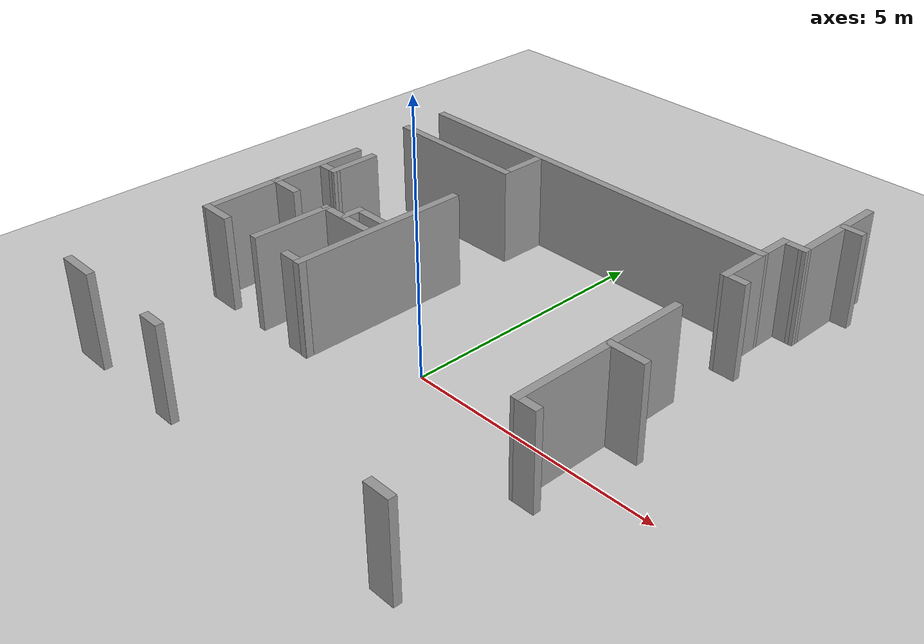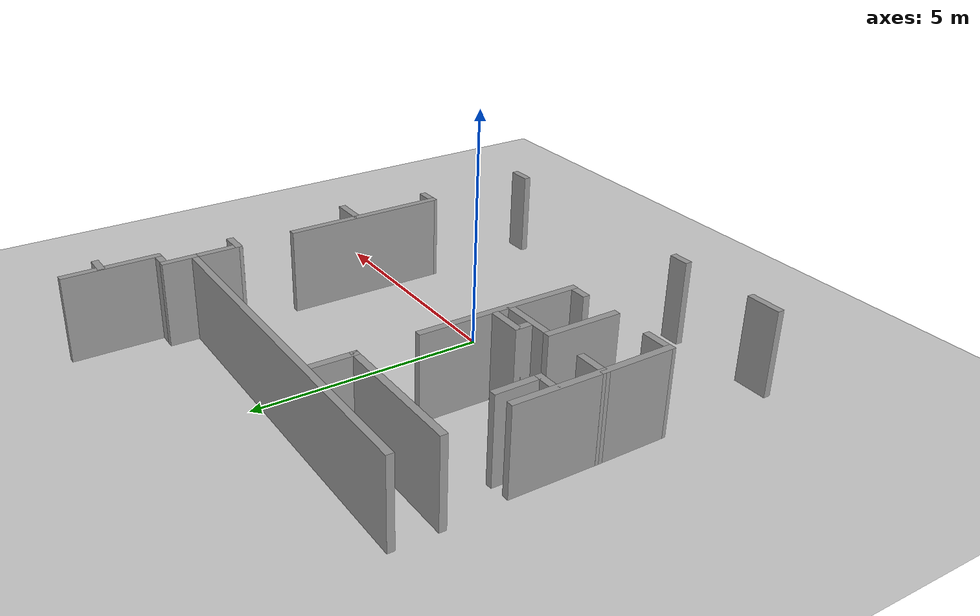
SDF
<sdf version="1.7">
 <world name="default">
  <model name="ground_plane">
   <static>1</static>
   <link name="link">
    <collision name="collision">
     <geometry><plane><normal>0 0 1</normal><size>100 100</size></plane></geometry>
     <surface>
      <contact><collide_bitmask>65535</collide_bitmask></contact>
      <friction><ode><mu>100</mu><mu2>50</mu2></ode></friction>
     </surface>
    </collision>
    <visual name="visual">
     <cast_shadows>0</cast_shadows>
     <geometry><plane><normal>0 0 1</normal><size>100 100</size></plane></geometry>
     <material>
      <script><uri>file://media/materials/scripts/gazebo.material</uri><name>Gazebo/Grey</name></script>
     </material>
    </visual>
   </link>
  </model>
  <model name="HQ_0">
   <link name="Wall_128">
    <pose>-2.03254 -3.63671 0 0 -0 3.14159</pose>
    <visual name="Wall_128_Visual">
     <pose>0 0 1.25 0 -0 0</pose>
     <geometry><box><size>0.444896 0.15 2</size></box></geometry>
     <material>
      <script><uri>file://media/materials/scripts/gazebo.material</uri><name>Gazebo/Grey</name></script>
      <ambient>1 1 1 1</ambient>
      <shader type="pixel"/>
     </material>
     <meta><layer>0</layer></meta>
    </visual>
    <collision name="Wall_128_Collision">
     <pose>0 0 1.25 0 -0 0</pose>
     <geometry><box><size>0.444896 0.15 2</size></box></geometry>
     <surface>
      <friction>
       <ode><mu>1</mu><mu2>1</mu2><fdir1>0 0 0</fdir1><slip1>0</slip1><slip2>0</slip2></ode>
       <torsional>
        <coefficient>1</coefficient>
        <patch_radius>0</patch_radius>
        <surface_radius>0</surface_radius>
        <use_patch_radius>1</use_patch_radius>
        <ode><slip>0</slip></ode>
       </torsional>
      </friction>
      <bounce><restitution_coefficient>0</restitution_coefficient><threshold>1e+06</threshold></bounce>
      <contact>
       <collide_without_contact>0</collide_without_contact>
       <collide_without_contact_bitmask>1</collide_without_contact_bitmask>
       <collide_bitmask>1</collide_bitmask>
       <ode>
        <soft_cfm>0</soft_cfm>
        <soft_erp>0.2</soft_erp>
        <kp>1e+13</kp>
        <kd>1</kd>
        <max_vel>0.01</max_vel>
        <min_depth>0</min_depth>
       </ode>
       <bullet>
        <split_impulse>1</split_impulse>
        <split_impulse_penetration_threshold>-0.01</split_impulse_penetration_threshold>
        <soft_cfm>0</soft_cfm>
        <soft_erp>0.2</soft_erp>
        <kp>1e+13</kp>
        <kd>1</kd>
       </bullet>
      </contact>
     </surface>
    </collision>
   </link>
   <link name="Wall_171">
    <pose>3.16808 0.700941 0 0 -0 1.57282</pose>
    <visual name="Wall_171_Visual">
     <pose>0 0 1.25 0 -0 0</pose>
     <geometry><box><size>3.58693 0.15 2</size></box></geometry>
     <material>
      <script><uri>file://media/materials/scripts/gazebo.material</uri><name>Gazebo/Grey</name></script>
      <ambient>1 1 1 1</ambient>
      <shader type="pixel"/>
     </material>
     <meta><layer>0</layer></meta>
    </visual>
    <collision name="Wall_171_Collision">
     <pose>0 0 1.25 0 -0 0</pose>
     <geometry><box><size>3.58693 0.15 2</size></box></geometry>
     <surface>
      <friction>
       <ode><mu>1</mu><mu2>1</mu2><fdir1>0 0 0</fdir1><slip1>0</slip1><slip2>0</slip2></ode>
       <torsional>
        <coefficient>1</coefficient>
        <patch_radius>0</patch_radius>
        <surface_radius>0</surface_radius>
        <use_patch_radius>1</use_patch_radius>
        <ode><slip>0</slip></ode>
       </torsional>
      </friction>
      <bounce><restitution_coefficient>0</restitution_coefficient><threshold>1e+06</threshold></bounce>
      <contact>
       <collide_without_contact>0</collide_without_contact>
       <collide_without_contact_bitmask>1</collide_without_contact_bitmask>
       <collide_bitmask>1</collide_bitmask>
       <ode>
        <soft_cfm>0</soft_cfm>
        <soft_erp>0.2</soft_erp>
        <kp>1e+13</kp>
        <kd>1</kd>
        <max_vel>0.01</max_vel>
        <min_depth>0</min_depth>
       </ode>
       <bullet>
        <split_impulse>1</split_impulse>
        <split_impulse_penetration_threshold>-0.01</split_impulse_penetration_threshold>
        <soft_cfm>0</soft_cfm>
        <soft_erp>0.2</soft_erp>
        <kp>1e+13</kp>
        <kd>1</kd>
       </bullet>
      </contact>
     </surface>
    </collision>
   </link>
   <link name="Wall_192">
    <pose>3.34656 -1.01752 0 0 -0 0</pose>
    <visual name="Wall_192_Visual">
     <pose>0 0 1.25 0 -0 0</pose>
     <geometry><box><size>0.5 0.15 2</size></box></geometry>
     <material>
      <script><uri>file://media/materials/scripts/gazebo.material</uri><name>Gazebo/Grey</name></script>
      <ambient>1 1 1 1</ambient>
      <shader type="pixel"/>
     </material>
     <meta><layer>0</layer></meta>
    </visual>
    <collision name="Wall_192_Collision">
     <pose>0 0 1.25 0 -0 0</pose>
     <geometry><box><size>0.5 0.15 2</size></box></geometry>
     <surface>
      <friction>
       <ode><mu>1</mu><mu2>1</mu2><fdir1>0 0 0</fdir1><slip1>0</slip1><slip2>0</slip2></ode>
       <torsional>
        <coefficient>1</coefficient>
        <patch_radius>0</patch_radius>
        <surface_radius>0</surface_radius>
        <use_patch_radius>1</use_patch_radius>
        <ode><slip>0</slip></ode>
       </torsional>
      </friction>
      <bounce><restitution_coefficient>0</restitution_coefficient><threshold>1e+06</threshold></bounce>
      <contact>
       <collide_without_contact>0</collide_without_contact>
       <collide_without_contact_bitmask>1</collide_without_contact_bitmask>
       <collide_bitmask>1</collide_bitmask>
       <ode>
        <soft_cfm>0</soft_cfm>
        <soft_erp>0.2</soft_erp>
        <kp>1e+13</kp>
        <kd>1</kd>
        <max_vel>0.01</max_vel>
        <min_depth>0</min_depth>
       </ode>
       <bullet>
        <split_impulse>1</split_impulse>
        <split_impulse_penetration_threshold>-0.01</split_impulse_penetration_threshold>
        <soft_cfm>0</soft_cfm>
        <soft_erp>0.2</soft_erp>
        <kp>1e+13</kp>
        <kd>1</kd>
       </bullet>
      </contact>
     </surface>
    </collision>
   </link>
   <link name="Wall_204">
    <pose>3.49517 0.905114 0 0 -0 0</pose>
    <inertial>
     <inertia><ixx>0</ixx><ixy>0</ixy><ixz>0</ixz><iyy>0</iyy><iyz>0</iyz><izz>0</izz></inertia>
     <mass>0</mass>
    </inertial>
    <visual name="Wall_204_Visual">
     <pose>0 0 1.25 0 -0 0</pose>
     <geometry><box><size>0.77819 0.15 2</size></box></geometry>
     <material>
      <script><uri>file://media/materials/scripts/gazebo.material</uri><name>Gazebo/Grey</name></script>
      <ambient>1 1 1 1</ambient>
      <shader type="pixel"/>
     </material>
     <meta><layer>0</layer></meta>
    </visual>
    <collision name="Wall_204_Collision">
     <pose>0 0 1.25 0 -0 0</pose>
     <geometry><box><size>0.77819 0.15 2</size></box></geometry>
     <surface>
      <friction>
       <ode><mu>1</mu><mu2>1</mu2><fdir1>0 0 0</fdir1><slip1>0</slip1><slip2>0</slip2></ode>
       <torsional>
        <coefficient>1</coefficient>
        <patch_radius>0</patch_radius>
        <surface_radius>0</surface_radius>
        <use_patch_radius>1</use_patch_radius>
        <ode><slip>0</slip></ode>
       </torsional>
      </friction>
      <bounce><restitution_coefficient>0</restitution_coefficient><threshold>1e+06</threshold></bounce>
      <contact>
       <collide_without_contact>0</collide_without_contact>
       <collide_without_contact_bitmask>1</collide_without_contact_bitmask>
       <collide_bitmask>1</collide_bitmask>
       <ode>
        <soft_cfm>0</soft_cfm>
        <soft_erp>0.2</soft_erp>
        <kp>1e+13</kp>
        <kd>1</kd>
        <max_vel>0.01</max_vel>
        <min_depth>0</min_depth>
       </ode>
       <bullet>
        <split_impulse>1</split_impulse>
        <split_impulse_penetration_threshold>-0.01</split_impulse_penetration_threshold>
        <soft_cfm>0</soft_cfm>
        <soft_erp>0.2</soft_erp>
        <kp>1e+13</kp>
        <kd>1</kd>
       </bullet>
      </contact>
     </surface>
    </collision>
   </link>
   <link name="Wall_217">
    <pose>3.12789 4.20563 0 0 0 -1.56588</pose>
    <visual name="Wall_217_Visual">
     <pose>0 0 1.25 0 -0 0</pose>
     <geometry><box><size>1.10451 0.15 2</size></box></geometry>
     <material>
      <script><uri>file://media/materials/scripts/gazebo.material</uri><name>Gazebo/Grey</name></script>
      <ambient>1 1 1 1</ambient>
      <shader type="pixel"/>
     </material>
     <meta><layer>0</layer></meta>
    </visual>
    <collision name="Wall_217_Collision">
     <pose>0 0 1.25 0 -0 0</pose>
     <geometry><box><size>1.10451 0.15 2</size></box></geometry>
     <surface>
      <friction>
       <ode><mu>1</mu><mu2>1</mu2><fdir1>0 0 0</fdir1><slip1>0</slip1><slip2>0</slip2></ode>
       <torsional>
        <coefficient>1</coefficient>
        <patch_radius>0</patch_radius>
        <surface_radius>0</surface_radius>
        <use_patch_radius>1</use_patch_radius>
        <ode><slip>0</slip></ode>
       </torsional>
      </friction>
      <bounce><restitution_coefficient>0</restitution_coefficient><threshold>1e+06</threshold></bounce>
      <contact>
       <collide_without_contact>0</collide_without_contact>
       <collide_without_contact_bitmask>1</collide_without_contact_bitmask>
       <collide_bitmask>1</collide_bitmask>
       <ode>
        <soft_cfm>0</soft_cfm>
        <soft_erp>0.2</soft_erp>
        <kp>1e+13</kp>
        <kd>1</kd>
        <max_vel>0.01</max_vel>
        <min_depth>0</min_depth>
       </ode>
       <bullet>
        <split_impulse>1</split_impulse>
        <split_impulse_penetration_threshold>-0.01</split_impulse_penetration_threshold>
        <soft_cfm>0</soft_cfm>
        <soft_erp>0.2</soft_erp>
        <kp>1e+13</kp>
        <kd>1</kd>
       </bullet>
      </contact>
     </surface>
    </collision>
   </link>
   <link name="Wall_220">
    <pose>3.30523 3.72838 0 0 -0 0</pose>
    <visual name="Wall_220_Visual">
     <pose>0 0 1.25 0 -0 0</pose>
     <geometry><box><size>0.5 0.15 2</size></box></geometry>
     <material>
      <script><uri>file://media/materials/scripts/gazebo.material</uri><name>Gazebo/Grey</name></script>
      <ambient>1 1 1 1</ambient>
      <shader type="pixel"/>
     </material>
     <meta><layer>0</layer></meta>
    </visual>
    <collision name="Wall_220_Collision">
     <pose>0 0 1.25 0 -0 0</pose>
     <geometry><box><size>0.5 0.15 2</size></box></geometry>
     <surface>
      <friction>
       <ode><mu>1</mu><mu2>1</mu2><fdir1>0 0 0</fdir1><slip1>0</slip1><slip2>0</slip2></ode>
       <torsional>
        <coefficient>1</coefficient>
        <patch_radius>0</patch_radius>
        <surface_radius>0</surface_radius>
        <use_patch_radius>1</use_patch_radius>
        <ode><slip>0</slip></ode>
       </torsional>
      </friction>
      <bounce><restitution_coefficient>0</restitution_coefficient><threshold>1e+06</threshold></bounce>
      <contact>
       <collide_without_contact>0</collide_without_contact>
       <collide_without_contact_bitmask>1</collide_without_contact_bitmask>
       <collide_bitmask>1</collide_bitmask>
       <ode>
        <soft_cfm>0</soft_cfm>
        <soft_erp>0.2</soft_erp>
        <kp>1e+13</kp>
        <kd>1</kd>
        <max_vel>0.01</max_vel>
        <min_depth>0</min_depth>
       </ode>
       <bullet>
        <split_impulse>1</split_impulse>
        <split_impulse_penetration_threshold>-0.01</split_impulse_penetration_threshold>
        <soft_cfm>0</soft_cfm>
        <soft_erp>0.2</soft_erp>
        <kp>1e+13</kp>
        <kd>1</kd>
       </bullet>
      </contact>
     </surface>
    </collision>
   </link>
   <link name="Wall_235">
    <pose>3.35912 -3.63375 0 0 -0 0</pose>
    <visual name="Wall_235_Visual">
     <pose>0 0 1.25 0 -0 0</pose>
     <geometry><box><size>0.5 0.15 2</size></box></geometry>
     <material>
      <script><uri>file://media/materials/scripts/gazebo.material</uri><name>Gazebo/Grey</name></script>
      <ambient>1 1 1 1</ambient>
      <shader type="pixel"/>
     </material>
     <meta><layer>0</layer></meta>
    </visual>
    <collision name="Wall_235_Collision">
     <pose>0 0 1.25 0 -0 0</pose>
     <geometry><box><size>0.5 0.15 2</size></box></geometry>
     <surface>
      <friction>
       <ode><mu>1</mu><mu2>1</mu2><fdir1>0 0 0</fdir1><slip1>0</slip1><slip2>0</slip2></ode>
       <torsional>
        <coefficient>1</coefficient>
        <patch_radius>0</patch_radius>
        <surface_radius>0</surface_radius>
        <use_patch_radius>1</use_patch_radius>
        <ode><slip>0</slip></ode>
       </torsional>
      </friction>
      <bounce><restitution_coefficient>0</restitution_coefficient><threshold>1e+06</threshold></bounce>
      <contact>
       <collide_without_contact>0</collide_without_contact>
       <collide_without_contact_bitmask>1</collide_without_contact_bitmask>
       <collide_bitmask>1</collide_bitmask>
       <ode>
        <soft_cfm>0</soft_cfm>
        <soft_erp>0.2</soft_erp>
        <kp>1e+13</kp>
        <kd>1</kd>
        <max_vel>0.01</max_vel>
        <min_depth>0</min_depth>
       </ode>
       <bullet>
        <split_impulse>1</split_impulse>
        <split_impulse_penetration_threshold>-0.01</split_impulse_penetration_threshold>
        <soft_cfm>0</soft_cfm>
        <soft_erp>0.2</soft_erp>
        <kp>1e+13</kp>
        <kd>1</kd>
       </bullet>
      </contact>
     </surface>
    </collision>
   </link>
   <link name="Wall_240">
    <pose>-2.6327 0.685901 0 0 -0 1.5708</pose>
    <visual name="Wall_240_Visual">
     <pose>0 0 1.25 0 -0 0</pose>
     <geometry><box><size>0.490265 0.15 2</size></box></geometry>
     <material>
      <script><uri>file://media/materials/scripts/gazebo.material</uri><name>Gazebo/Grey</name></script>
      <ambient>1 1 1 1</ambient>
      <shader type="pixel"/>
     </material>
     <meta><layer>0</layer></meta>
    </visual>
    <collision name="Wall_240_Collision">
     <pose>0 0 1.25 0 -0 0</pose>
     <geometry><box><size>0.490265 0.15 2</size></box></geometry>
     <surface>
      <friction>
       <ode><mu>1</mu><mu2>1</mu2><fdir1>0 0 0</fdir1><slip1>0</slip1><slip2>0</slip2></ode>
       <torsional>
        <coefficient>1</coefficient>
        <patch_radius>0</patch_radius>
        <surface_radius>0</surface_radius>
        <use_patch_radius>1</use_patch_radius>
        <ode><slip>0</slip></ode>
       </torsional>
      </friction>
      <bounce><restitution_coefficient>0</restitution_coefficient><threshold>1e+06</threshold></bounce>
      <contact>
       <collide_without_contact>0</collide_without_contact>
       <collide_without_contact_bitmask>1</collide_without_contact_bitmask>
       <collide_bitmask>1</collide_bitmask>
       <ode>
        <soft_cfm>0</soft_cfm>
        <soft_erp>0.2</soft_erp>
        <kp>1e+13</kp>
        <kd>1</kd>
        <max_vel>0.01</max_vel>
        <min_depth>0</min_depth>
       </ode>
       <bullet>
        <split_impulse>1</split_impulse>
        <split_impulse_penetration_threshold>-0.01</split_impulse_penetration_threshold>
        <soft_cfm>0</soft_cfm>
        <soft_erp>0.2</soft_erp>
        <kp>1e+13</kp>
        <kd>1</kd>
       </bullet>
      </contact>
     </surface>
    </collision>
   </link>
   <link name="Wall_241">
    <pose>-2.3327 0.856033 0 0 -0 0</pose>
    <visual name="Wall_241_Visual">
     <pose>0 0 1.25 0 -0 0</pose>
     <geometry><box><size>0.75 0.15 2</size></box></geometry>
     <material>
      <script><uri>file://media/materials/scripts/gazebo.material</uri><name>Gazebo/Grey</name></script>
      <ambient>1 1 1 1</ambient>
      <shader type="pixel"/>
     </material>
     <meta><layer>0</layer></meta>
    </visual>
    <collision name="Wall_241_Collision">
     <pose>0 0 1.25 0 -0 0</pose>
     <geometry><box><size>0.75 0.15 2</size></box></geometry>
     <surface>
      <friction>
       <ode><mu>1</mu><mu2>1</mu2><fdir1>0 0 0</fdir1><slip1>0</slip1><slip2>0</slip2></ode>
       <torsional>
        <coefficient>1</coefficient>
        <patch_radius>0</patch_radius>
        <surface_radius>0</surface_radius>
        <use_patch_radius>1</use_patch_radius>
        <ode><slip>0</slip></ode>
       </torsional>
      </friction>
      <bounce><restitution_coefficient>0</restitution_coefficient><threshold>1e+06</threshold></bounce>
      <contact>
       <collide_without_contact>0</collide_without_contact>
       <collide_without_contact_bitmask>1</collide_without_contact_bitmask>
       <collide_bitmask>1</collide_bitmask>
       <ode>
        <soft_cfm>0</soft_cfm>
        <soft_erp>0.2</soft_erp>
        <kp>1e+13</kp>
        <kd>1</kd>
        <max_vel>0.01</max_vel>
        <min_depth>0</min_depth>
       </ode>
       <bullet>
        <split_impulse>1</split_impulse>
        <split_impulse_penetration_threshold>-0.01</split_impulse_penetration_threshold>
        <soft_cfm>0</soft_cfm>
        <soft_erp>0.2</soft_erp>
        <kp>1e+13</kp>
        <kd>1</kd>
       </bullet>
      </contact>
     </surface>
    </collision>
   </link>
   <link name="Wall_244">
    <pose>-4.25062 -3.64086 0 0 -0 3.14159</pose>
    <visual name="Wall_244_Visual">
     <pose>0 0 1.25 0 -0 0</pose>
     <geometry><box><size>0.75 0.15 2</size></box></geometry>
     <material>
      <script><uri>file://media/materials/scripts/gazebo.material</uri><name>Gazebo/Grey</name></script>
      <ambient>1 1 1 1</ambient>
      <shader type="pixel"/>
     </material>
     <meta><layer>0</layer></meta>
    </visual>
    <collision name="Wall_244_Collision">
     <pose>0 0 1.25 0 -0 0</pose>
     <geometry><box><size>0.75 0.15 2</size></box></geometry>
     <surface>
      <friction>
       <ode><mu>1</mu><mu2>1</mu2><fdir1>0 0 0</fdir1><slip1>0</slip1><slip2>0</slip2></ode>
       <torsional>
        <coefficient>1</coefficient>
        <patch_radius>0</patch_radius>
        <surface_radius>0</surface_radius>
        <use_patch_radius>1</use_patch_radius>
        <ode><slip>0</slip></ode>
       </torsional>
      </friction>
      <bounce><restitution_coefficient>0</restitution_coefficient><threshold>1e+06</threshold></bounce>
      <contact>
       <collide_without_contact>0</collide_without_contact>
       <collide_without_contact_bitmask>1</collide_without_contact_bitmask>
       <collide_bitmask>1</collide_bitmask>
       <ode>
        <soft_cfm>0</soft_cfm>
        <soft_erp>0.2</soft_erp>
        <kp>1e+13</kp>
        <kd>1</kd>
        <max_vel>0.01</max_vel>
        <min_depth>0</min_depth>
       </ode>
       <bullet>
        <split_impulse>1</split_impulse>
        <split_impulse_penetration_threshold>-0.01</split_impulse_penetration_threshold>
        <soft_cfm>0</soft_cfm>
        <soft_erp>0.2</soft_erp>
        <kp>1e+13</kp>
        <kd>1</kd>
       </bullet>
      </contact>
     </surface>
    </collision>
   </link>
   <link name="Wall_260">
    <pose>3.70877 6.46205 0 0 -0 0</pose>
    <visual name="Wall_260_Visual">
     <pose>0 0 1.25 0 -0 0</pose>
     <geometry><box><size>0.453029 0.15 2</size></box></geometry>
     <material>
      <script><uri>file://media/materials/scripts/gazebo.material</uri><name>Gazebo/Grey</name></script>
      <ambient>1 1 1 1</ambient>
      <shader type="pixel"/>
     </material>
     <meta><layer>0</layer></meta>
    </visual>
    <collision name="Wall_260_Collision">
     <pose>0 0 1.25 0 -0 0</pose>
     <geometry><box><size>0.453029 0.15 2</size></box></geometry>
     <surface>
      <friction>
       <ode><mu>1</mu><mu2>1</mu2><fdir1>0 0 0</fdir1><slip1>0</slip1><slip2>0</slip2></ode>
       <torsional>
        <coefficient>1</coefficient>
        <patch_radius>0</patch_radius>
        <surface_radius>0</surface_radius>
        <use_patch_radius>1</use_patch_radius>
        <ode><slip>0</slip></ode>
       </torsional>
      </friction>
      <bounce><restitution_coefficient>0</restitution_coefficient><threshold>1e+06</threshold></bounce>
      <contact>
       <collide_without_contact>0</collide_without_contact>
       <collide_without_contact_bitmask>1</collide_without_contact_bitmask>
       <collide_bitmask>1</collide_bitmask>
       <ode>
        <soft_cfm>0</soft_cfm>
        <soft_erp>0.2</soft_erp>
        <kp>1e+13</kp>
        <kd>1</kd>
        <max_vel>0.01</max_vel>
        <min_depth>0</min_depth>
       </ode>
       <bullet>
        <split_impulse>1</split_impulse>
        <split_impulse_penetration_threshold>-0.01</split_impulse_penetration_threshold>
        <soft_cfm>0</soft_cfm>
        <soft_erp>0.2</soft_erp>
        <kp>1e+13</kp>
        <kd>1</kd>
       </bullet>
      </contact>
     </surface>
    </collision>
   </link>
   <link name="Wall_4">
    <pose>-0.779458 4.68787 0 0 0 -0.00128</pose>
    <visual name="Wall_4_Visual">
     <pose>0 0 1.25 0 -0 0</pose>
     <geometry><box><size>7.96001 0.15 2</size></box></geometry>
     <material>
      <script><uri>file://media/materials/scripts/gazebo.material</uri><name>Gazebo/Grey</name></script>
      <ambient>1 1 1 1</ambient>
      <shader type="pixel"/>
     </material>
     <meta><layer>0</layer></meta>
    </visual>
    <collision name="Wall_4_Collision">
     <pose>0 0 1.25 0 -0 0</pose>
     <geometry><box><size>7.96001 0.15 2</size></box></geometry>
     <surface>
      <friction>
       <ode><mu>1</mu><mu2>1</mu2><fdir1>0 0 0</fdir1><slip1>0</slip1><slip2>0</slip2></ode>
       <torsional>
        <coefficient>1</coefficient>
        <patch_radius>0</patch_radius>
        <surface_radius>0</surface_radius>
        <use_patch_radius>1</use_patch_radius>
        <ode><slip>0</slip></ode>
       </torsional>
      </friction>
      <bounce><restitution_coefficient>0</restitution_coefficient><threshold>1e+06</threshold></bounce>
      <contact>
       <collide_without_contact>0</collide_without_contact>
       <collide_without_contact_bitmask>1</collide_without_contact_bitmask>
       <collide_bitmask>1</collide_bitmask>
       <ode>
        <soft_cfm>0</soft_cfm>
        <soft_erp>0.2</soft_erp>
        <kp>1e+13</kp>
        <kd>1</kd>
        <max_vel>0.01</max_vel>
        <min_depth>0</min_depth>
       </ode>
       <bullet>
        <split_impulse>1</split_impulse>
        <split_impulse_penetration_threshold>-0.01</split_impulse_penetration_threshold>
        <soft_cfm>0</soft_cfm>
        <soft_erp>0.2</soft_erp>
        <kp>1e+13</kp>
        <kd>1</kd>
       </bullet>
      </contact>
     </surface>
    </collision>
   </link>
   <link name="Wall_45">
    <pose>-1.9023 0.710551 0 0 0 -1.5708</pose>
    <visual name="Wall_45_Visual">
     <pose>0 0 1.25 0 -0 0</pose>
     <geometry><box><size>3.53478 0.15 2</size></box></geometry>
     <material>
      <script><uri>file://media/materials/scripts/gazebo.material</uri><name>Gazebo/Grey</name></script>
      <ambient>1 1 1 1</ambient>
      <shader type="pixel"/>
     </material>
     <meta><layer>0</layer></meta>
    </visual>
    <collision name="Wall_45_Collision">
     <pose>0 0 1.25 0 -0 0</pose>
     <geometry><box><size>3.53478 0.15 2</size></box></geometry>
     <surface>
      <friction>
       <ode><mu>1</mu><mu2>1</mu2><fdir1>0 0 0</fdir1><slip1>0</slip1><slip2>0</slip2></ode>
       <torsional>
        <coefficient>1</coefficient>
        <patch_radius>0</patch_radius>
        <surface_radius>0</surface_radius>
        <use_patch_radius>1</use_patch_radius>
        <ode><slip>0</slip></ode>
       </torsional>
      </friction>
      <bounce><restitution_coefficient>0</restitution_coefficient><threshold>1e+06</threshold></bounce>
      <contact>
       <collide_without_contact>0</collide_without_contact>
       <collide_without_contact_bitmask>1</collide_without_contact_bitmask>
       <collide_bitmask>1</collide_bitmask>
       <ode>
        <soft_cfm>0</soft_cfm>
        <soft_erp>0.2</soft_erp>
        <kp>1e+13</kp>
        <kd>1</kd>
        <max_vel>0.01</max_vel>
        <min_depth>0</min_depth>
       </ode>
       <bullet>
        <split_impulse>1</split_impulse>
        <split_impulse_penetration_threshold>-0.01</split_impulse_penetration_threshold>
        <soft_cfm>0</soft_cfm>
        <soft_erp>0.2</soft_erp>
        <kp>1e+13</kp>
        <kd>1</kd>
       </bullet>
      </contact>
     </surface>
    </collision>
   </link>
   <link name="Wall_47">
    <pose>-2.0773 -0.973145 0 0 -0 3.14159</pose>
    <visual name="Wall_47_Visual">
     <pose>0 0 1.25 0 -0 0</pose>
     <geometry><box><size>0.5 0.15 2</size></box></geometry>
     <material>
      <script><uri>file://media/materials/scripts/gazebo.material</uri><name>Gazebo/Grey</name></script>
      <ambient>1 1 1 1</ambient>
      <shader type="pixel"/>
     </material>
     <meta><layer>0</layer></meta>
    </visual>
    <collision name="Wall_47_Collision">
     <pose>0 0 1.25 0 -0 0</pose>
     <geometry><box><size>0.5 0.15 2</size></box></geometry>
     <surface>
      <friction>
       <ode><mu>1</mu><mu2>1</mu2><fdir1>0 0 0</fdir1><slip1>0</slip1><slip2>0</slip2></ode>
       <torsional>
        <coefficient>1</coefficient>
        <patch_radius>0</patch_radius>
        <surface_radius>0</surface_radius>
        <use_patch_radius>1</use_patch_radius>
        <ode><slip>0</slip></ode>
       </torsional>
      </friction>
      <bounce><restitution_coefficient>0</restitution_coefficient><threshold>1e+06</threshold></bounce>
      <contact>
       <collide_without_contact>0</collide_without_contact>
       <collide_without_contact_bitmask>1</collide_without_contact_bitmask>
       <collide_bitmask>1</collide_bitmask>
       <ode>
        <soft_cfm>0</soft_cfm>
        <soft_erp>0.2</soft_erp>
        <kp>1e+13</kp>
        <kd>1</kd>
        <max_vel>0.01</max_vel>
        <min_depth>0</min_depth>
       </ode>
       <bullet>
        <split_impulse>1</split_impulse>
        <split_impulse_penetration_threshold>-0.01</split_impulse_penetration_threshold>
        <soft_cfm>0</soft_cfm>
        <soft_erp>0.2</soft_erp>
        <kp>1e+13</kp>
        <kd>1</kd>
       </bullet>
      </contact>
     </surface>
    </collision>
   </link>
   <link name="Wall_49">
    <pose>-3.09928 -0.248315 0 0 -0 1.5708</pose>
    <visual name="Wall_49_Visual">
     <pose>0 0 1.25 0 -0 0</pose>
     <geometry><box><size>1.62826 0.15 2</size></box></geometry>
     <material>
      <script><uri>file://media/materials/scripts/gazebo.material</uri><name>Gazebo/Grey</name></script>
      <ambient>1 1 1 1</ambient>
      <shader type="pixel"/>
     </material>
     <meta><layer>0</layer></meta>
    </visual>
    <collision name="Wall_49_Collision">
     <pose>0 0 1.25 0 -0 0</pose>
     <geometry><box><size>1.62826 0.15 2</size></box></geometry>
     <surface>
      <friction>
       <ode><mu>1</mu><mu2>1</mu2><fdir1>0 0 0</fdir1><slip1>0</slip1><slip2>0</slip2></ode>
       <torsional>
        <coefficient>1</coefficient>
        <patch_radius>0</patch_radius>
        <surface_radius>0</surface_radius>
        <use_patch_radius>1</use_patch_radius>
        <ode><slip>0</slip></ode>
       </torsional>
      </friction>
      <bounce><restitution_coefficient>0</restitution_coefficient><threshold>1e+06</threshold></bounce>
      <contact>
       <collide_without_contact>0</collide_without_contact>
       <collide_without_contact_bitmask>1</collide_without_contact_bitmask>
       <collide_bitmask>1</collide_bitmask>
       <ode>
        <soft_cfm>0</soft_cfm>
        <soft_erp>0.2</soft_erp>
        <kp>1e+13</kp>
        <kd>1</kd>
        <max_vel>0.01</max_vel>
        <min_depth>0</min_depth>
       </ode>
       <bullet>
        <split_impulse>1</split_impulse>
        <split_impulse_penetration_threshold>-0.01</split_impulse_penetration_threshold>
        <soft_cfm>0</soft_cfm>
        <soft_erp>0.2</soft_erp>
        <kp>1e+13</kp>
        <kd>1</kd>
       </bullet>
      </contact>
     </surface>
    </collision>
   </link>
   <link name="Wall_50">
    <pose>-2.51232 0.490815 0 0 -0 0</pose>
    <visual name="Wall_50_Visual">
     <pose>0 0 1.25 0 -0 0</pose>
     <geometry><box><size>1.32391 0.15 2</size></box></geometry>
     <material>
      <script><uri>file://media/materials/scripts/gazebo.material</uri><name>Gazebo/Grey</name></script>
      <ambient>1 1 1 1</ambient>
      <shader type="pixel"/>
     </material>
     <meta><layer>0</layer></meta>
    </visual>
    <collision name="Wall_50_Collision">
     <pose>0 0 1.25 0 -0 0</pose>
     <geometry><box><size>1.32391 0.15 2</size></box></geometry>
     <surface>
      <friction>
       <ode><mu>1</mu><mu2>1</mu2><fdir1>0 0 0</fdir1><slip1>0</slip1><slip2>0</slip2></ode>
       <torsional>
        <coefficient>1</coefficient>
        <patch_radius>0</patch_radius>
        <surface_radius>0</surface_radius>
        <use_patch_radius>1</use_patch_radius>
        <ode><slip>0</slip></ode>
       </torsional>
      </friction>
      <bounce><restitution_coefficient>0</restitution_coefficient><threshold>1e+06</threshold></bounce>
      <contact>
       <collide_without_contact>0</collide_without_contact>
       <collide_without_contact_bitmask>1</collide_without_contact_bitmask>
       <collide_bitmask>1</collide_bitmask>
       <ode>
        <soft_cfm>0</soft_cfm>
        <soft_erp>0.2</soft_erp>
        <kp>1e+13</kp>
        <kd>1</kd>
        <max_vel>0.01</max_vel>
        <min_depth>0</min_depth>
       </ode>
       <bullet>
        <split_impulse>1</split_impulse>
        <split_impulse_penetration_threshold>-0.01</split_impulse_penetration_threshold>
        <soft_cfm>0</soft_cfm>
        <soft_erp>0.2</soft_erp>
        <kp>1e+13</kp>
        <kd>1</kd>
       </bullet>
      </contact>
     </surface>
    </collision>
   </link>
   <link name="Wall_55">
    <pose>-4.56015 -0.248315 0 0 -0 1.58256</pose>
    <visual name="Wall_55_Visual">
     <pose>0 0 1.25 0 -0 0</pose>
     <geometry><box><size>1.62836 0.15 2</size></box></geometry>
     <material>
      <script><uri>file://media/materials/scripts/gazebo.material</uri><name>Gazebo/Grey</name></script>
      <ambient>1 1 1 1</ambient>
      <shader type="pixel"/>
     </material>
     <meta><layer>0</layer></meta>
    </visual>
    <collision name="Wall_55_Collision">
     <pose>0 0 1.25 0 -0 0</pose>
     <geometry><box><size>1.62836 0.15 2</size></box></geometry>
     <surface>
      <friction>
       <ode><mu>1</mu><mu2>1</mu2><fdir1>0 0 0</fdir1><slip1>0</slip1><slip2>0</slip2></ode>
       <torsional>
        <coefficient>1</coefficient>
        <patch_radius>0</patch_radius>
        <surface_radius>0</surface_radius>
        <use_patch_radius>1</use_patch_radius>
        <ode><slip>0</slip></ode>
       </torsional>
      </friction>
      <bounce><restitution_coefficient>0</restitution_coefficient><threshold>1e+06</threshold></bounce>
      <contact>
       <collide_without_contact>0</collide_without_contact>
       <collide_without_contact_bitmask>1</collide_without_contact_bitmask>
       <collide_bitmask>1</collide_bitmask>
       <ode>
        <soft_cfm>0</soft_cfm>
        <soft_erp>0.2</soft_erp>
        <kp>1e+13</kp>
        <kd>1</kd>
        <max_vel>0.01</max_vel>
        <min_depth>0</min_depth>
       </ode>
       <bullet>
        <split_impulse>1</split_impulse>
        <split_impulse_penetration_threshold>-0.01</split_impulse_penetration_threshold>
        <soft_cfm>0</soft_cfm>
        <soft_erp>0.2</soft_erp>
        <kp>1e+13</kp>
        <kd>1</kd>
       </bullet>
      </contact>
     </surface>
    </collision>
   </link>
   <link name="Wall_56">
    <pose>-4.29493 0.48212 0 0 -0 0</pose>
    <visual name="Wall_56_Visual">
     <pose>0 0 1.25 0 -0 0</pose>
     <geometry><box><size>0.697826 0.15 2</size></box></geometry>
     <material>
      <script><uri>file://media/materials/scripts/gazebo.material</uri><name>Gazebo/Grey</name></script>
      <ambient>1 1 1 1</ambient>
      <shader type="pixel"/>
     </material>
     <meta><layer>0</layer></meta>
    </visual>
    <collision name="Wall_56_Collision">
     <pose>0 0 1.25 0 -0 0</pose>
     <geometry><box><size>0.697826 0.15 2</size></box></geometry>
     <surface>
      <friction>
       <ode><mu>1</mu><mu2>1</mu2><fdir1>0 0 0</fdir1><slip1>0</slip1><slip2>0</slip2></ode>
       <torsional>
        <coefficient>1</coefficient>
        <patch_radius>0</patch_radius>
        <surface_radius>0</surface_radius>
        <use_patch_radius>1</use_patch_radius>
        <ode><slip>0</slip></ode>
       </torsional>
      </friction>
      <bounce><restitution_coefficient>0</restitution_coefficient><threshold>1e+06</threshold></bounce>
      <contact>
       <collide_without_contact>0</collide_without_contact>
       <collide_without_contact_bitmask>1</collide_without_contact_bitmask>
       <collide_bitmask>1</collide_bitmask>
       <ode>
        <soft_cfm>0</soft_cfm>
        <soft_erp>0.2</soft_erp>
        <kp>1e+13</kp>
        <kd>1</kd>
        <max_vel>0.01</max_vel>
        <min_depth>0</min_depth>
       </ode>
       <bullet>
        <split_impulse>1</split_impulse>
        <split_impulse_penetration_threshold>-0.01</split_impulse_penetration_threshold>
        <soft_cfm>0</soft_cfm>
        <soft_erp>0.2</soft_erp>
        <kp>1e+13</kp>
        <kd>1</kd>
       </bullet>
      </contact>
     </surface>
    </collision>
   </link>
   <link name="Wall_6">
    <pose>3.12554 4.99287 0 0 -0 1.5708</pose>
    <visual name="Wall_6_Visual">
     <pose>0 0 1.25 0 -0 0</pose>
     <geometry><box><size>0.77 0.15 2</size></box></geometry>
     <material>
      <script><uri>file://media/materials/scripts/gazebo.material</uri><name>Gazebo/Grey</name></script>
      <ambient>1 1 1 1</ambient>
      <shader type="pixel"/>
     </material>
     <meta><layer>0</layer></meta>
    </visual>
    <collision name="Wall_6_Collision">
     <pose>0 0 1.25 0 -0 0</pose>
     <geometry><box><size>0.77 0.15 2</size></box></geometry>
     <surface>
      <friction>
       <ode><mu>1</mu><mu2>1</mu2><fdir1>0 0 0</fdir1><slip1>0</slip1><slip2>0</slip2></ode>
       <torsional>
        <coefficient>1</coefficient>
        <patch_radius>0</patch_radius>
        <surface_radius>0</surface_radius>
        <use_patch_radius>1</use_patch_radius>
        <ode><slip>0</slip></ode>
       </torsional>
      </friction>
      <bounce><restitution_coefficient>0</restitution_coefficient><threshold>1e+06</threshold></bounce>
      <contact>
       <collide_without_contact>0</collide_without_contact>
       <collide_without_contact_bitmask>1</collide_without_contact_bitmask>
       <collide_bitmask>1</collide_bitmask>
       <ode>
        <soft_cfm>0</soft_cfm>
        <soft_erp>0.2</soft_erp>
        <kp>1e+13</kp>
        <kd>1</kd>
        <max_vel>0.01</max_vel>
        <min_depth>0</min_depth>
       </ode>
       <bullet>
        <split_impulse>1</split_impulse>
        <split_impulse_penetration_threshold>-0.01</split_impulse_penetration_threshold>
        <soft_cfm>0</soft_cfm>
        <soft_erp>0.2</soft_erp>
        <kp>1e+13</kp>
        <kd>1</kd>
       </bullet>
      </contact>
     </surface>
    </collision>
   </link>
   <link name="Wall_60">
    <pose>-4.28623 -0.987445 0 0 -0 0</pose>
    <visual name="Wall_60_Visual">
     <pose>0 0 1.25 0 -0 0</pose>
     <geometry><box><size>0.680506 0.15 2</size></box></geometry>
     <material>
      <script><uri>file://media/materials/scripts/gazebo.material</uri><name>Gazebo/Grey</name></script>
      <ambient>1 1 1 1</ambient>
      <shader type="pixel"/>
     </material>
     <meta><layer>0</layer></meta>
    </visual>
    <collision name="Wall_60_Collision">
     <pose>0 0 1.25 0 -0 0</pose>
     <geometry><box><size>0.680506 0.15 2</size></box></geometry>
     <surface>
      <friction>
       <ode><mu>1</mu><mu2>1</mu2><fdir1>0 0 0</fdir1><slip1>0</slip1><slip2>0</slip2></ode>
       <torsional>
        <coefficient>1</coefficient>
        <patch_radius>0</patch_radius>
        <surface_radius>0</surface_radius>
        <use_patch_radius>1</use_patch_radius>
        <ode><slip>0</slip></ode>
       </torsional>
      </friction>
      <bounce><restitution_coefficient>0</restitution_coefficient><threshold>1e+06</threshold></bounce>
      <contact>
       <collide_without_contact>0</collide_without_contact>
       <collide_without_contact_bitmask>1</collide_without_contact_bitmask>
       <collide_bitmask>1</collide_bitmask>
       <ode>
        <soft_cfm>0</soft_cfm>
        <soft_erp>0.2</soft_erp>
        <kp>1e+13</kp>
        <kd>1</kd>
        <max_vel>0.01</max_vel>
        <min_depth>0</min_depth>
       </ode>
       <bullet>
        <split_impulse>1</split_impulse>
        <split_impulse_penetration_threshold>-0.01</split_impulse_penetration_threshold>
        <soft_cfm>0</soft_cfm>
        <soft_erp>0.2</soft_erp>
        <kp>1e+13</kp>
        <kd>1</kd>
       </bullet>
      </contact>
     </surface>
    </collision>
   </link>
   <link name="Wall_62">
    <pose>-4.56884 1.40712 0 0 -0 1.5708</pose>
    <visual name="Wall_62_Visual">
     <pose>0 0 1.25 0 -0 0</pose>
     <geometry><box><size>2 0.15 2</size></box></geometry>
     <material>
      <script><uri>file://media/materials/scripts/gazebo.material</uri><name>Gazebo/Grey</name></script>
      <ambient>1 1 1 1</ambient>
      <shader type="pixel"/>
     </material>
     <meta><layer>0</layer></meta>
    </visual>
    <collision name="Wall_62_Collision">
     <pose>0 0 1.25 0 -0 0</pose>
     <geometry><box><size>2 0.15 2</size></box></geometry>
     <surface>
      <friction>
       <ode><mu>1</mu><mu2>1</mu2><fdir1>0 0 0</fdir1><slip1>0</slip1><slip2>0</slip2></ode>
       <torsional>
        <coefficient>1</coefficient>
        <patch_radius>0</patch_radius>
        <surface_radius>0</surface_radius>
        <use_patch_radius>1</use_patch_radius>
        <ode><slip>0</slip></ode>
       </torsional>
      </friction>
      <bounce><restitution_coefficient>0</restitution_coefficient><threshold>1e+06</threshold></bounce>
      <contact>
       <collide_without_contact>0</collide_without_contact>
       <collide_without_contact_bitmask>1</collide_without_contact_bitmask>
       <collide_bitmask>1</collide_bitmask>
       <ode>
        <soft_cfm>0</soft_cfm>
        <soft_erp>0.2</soft_erp>
        <kp>1e+13</kp>
        <kd>1</kd>
        <max_vel>0.01</max_vel>
        <min_depth>0</min_depth>
       </ode>
       <bullet>
        <split_impulse>1</split_impulse>
        <split_impulse_penetration_threshold>-0.01</split_impulse_penetration_threshold>
        <soft_cfm>0</soft_cfm>
        <soft_erp>0.2</soft_erp>
        <kp>1e+13</kp>
        <kd>1</kd>
       </bullet>
      </contact>
     </surface>
    </collision>
   </link>
   <link name="Wall_65">
    <pose>-4.16449 1.93864 0 0 0 -1.56109</pose>
    <visual name="Wall_65_Visual">
     <pose>0 0 1.25 0 -0 0</pose>
     <geometry><box><size>1.04582 0.15 2</size></box></geometry>
     <material>
      <script><uri>file://media/materials/scripts/gazebo.material</uri><name>Gazebo/Grey</name></script>
      <ambient>1 1 1 1</ambient>
      <shader type="pixel"/>
     </material>
     <meta><layer>0</layer></meta>
    </visual>
    <collision name="Wall_65_Collision">
     <pose>0 0 1.25 0 -0 0</pose>
     <geometry><box><size>1.04582 0.15 2</size></box></geometry>
     <surface>
      <friction>
       <ode><mu>1</mu><mu2>1</mu2><fdir1>0 0 0</fdir1><slip1>0</slip1><slip2>0</slip2></ode>
       <torsional>
        <coefficient>1</coefficient>
        <patch_radius>0</patch_radius>
        <surface_radius>0</surface_radius>
        <use_patch_radius>1</use_patch_radius>
        <ode><slip>0</slip></ode>
       </torsional>
      </friction>
      <bounce><restitution_coefficient>0</restitution_coefficient><threshold>1e+06</threshold></bounce>
      <contact>
       <collide_without_contact>0</collide_without_contact>
       <collide_without_contact_bitmask>1</collide_without_contact_bitmask>
       <collide_bitmask>1</collide_bitmask>
       <ode>
        <soft_cfm>0</soft_cfm>
        <soft_erp>0.2</soft_erp>
        <kp>1e+13</kp>
        <kd>1</kd>
        <max_vel>0.01</max_vel>
        <min_depth>0</min_depth>
       </ode>
       <bullet>
        <split_impulse>1</split_impulse>
        <split_impulse_penetration_threshold>-0.01</split_impulse_penetration_threshold>
        <soft_cfm>0</soft_cfm>
        <soft_erp>0.2</soft_erp>
        <kp>1e+13</kp>
        <kd>1</kd>
       </bullet>
      </contact>
     </surface>
    </collision>
   </link>
   <link name="Wall_66">
    <pose>-4.35145 1.49082 0 0 -0 3.14159</pose>
    <visual name="Wall_66_Visual">
     <pose>0 0 1.25 0 -0 0</pose>
     <geometry><box><size>0.532609 0.15 2</size></box></geometry>
     <material>
      <script><uri>file://media/materials/scripts/gazebo.material</uri><name>Gazebo/Grey</name></script>
      <ambient>1 1 1 1</ambient>
      <shader type="pixel"/>
     </material>
     <meta><layer>0</layer></meta>
    </visual>
    <collision name="Wall_66_Collision">
     <pose>0 0 1.25 0 -0 0</pose>
     <geometry><box><size>0.532609 0.15 2</size></box></geometry>
     <surface>
      <friction>
       <ode><mu>1</mu><mu2>1</mu2><fdir1>0 0 0</fdir1><slip1>0</slip1><slip2>0</slip2></ode>
       <torsional>
        <coefficient>1</coefficient>
        <patch_radius>0</patch_radius>
        <surface_radius>0</surface_radius>
        <use_patch_radius>1</use_patch_radius>
        <ode><slip>0</slip></ode>
       </torsional>
      </friction>
      <bounce><restitution_coefficient>0</restitution_coefficient><threshold>1e+06</threshold></bounce>
      <contact>
       <collide_without_contact>0</collide_without_contact>
       <collide_without_contact_bitmask>1</collide_without_contact_bitmask>
       <collide_bitmask>1</collide_bitmask>
       <ode>
        <soft_cfm>0</soft_cfm>
        <soft_erp>0.2</soft_erp>
        <kp>1e+13</kp>
        <kd>1</kd>
        <max_vel>0.01</max_vel>
        <min_depth>0</min_depth>
       </ode>
       <bullet>
        <split_impulse>1</split_impulse>
        <split_impulse_penetration_threshold>-0.01</split_impulse_penetration_threshold>
        <soft_cfm>0</soft_cfm>
        <soft_erp>0.2</soft_erp>
        <kp>1e+13</kp>
        <kd>1</kd>
       </bullet>
      </contact>
     </surface>
    </collision>
   </link>
   <link name="Wall_7">
    <pose>3.33054 5.30287 0 0 -0 0</pose>
    <visual name="Wall_7_Visual">
     <pose>0 0 1.25 0 -0 0</pose>
     <geometry><box><size>0.56 0.15 2</size></box></geometry>
     <material>
      <script><uri>file://media/materials/scripts/gazebo.material</uri><name>Gazebo/Grey</name></script>
      <ambient>1 1 1 1</ambient>
      <shader type="pixel"/>
     </material>
     <meta><layer>0</layer></meta>
    </visual>
    <collision name="Wall_7_Collision">
     <pose>0 0 1.25 0 -0 0</pose>
     <geometry><box><size>0.56 0.15 2</size></box></geometry>
     <surface>
      <friction>
       <ode><mu>1</mu><mu2>1</mu2><fdir1>0 0 0</fdir1><slip1>0</slip1><slip2>0</slip2></ode>
       <torsional>
        <coefficient>1</coefficient>
        <patch_radius>0</patch_radius>
        <surface_radius>0</surface_radius>
        <use_patch_radius>1</use_patch_radius>
        <ode><slip>0</slip></ode>
       </torsional>
      </friction>
      <bounce><restitution_coefficient>0</restitution_coefficient><threshold>1e+06</threshold></bounce>
      <contact>
       <collide_without_contact>0</collide_without_contact>
       <collide_without_contact_bitmask>1</collide_without_contact_bitmask>
       <collide_bitmask>1</collide_bitmask>
       <ode>
        <soft_cfm>0</soft_cfm>
        <soft_erp>0.2</soft_erp>
        <kp>1e+13</kp>
        <kd>1</kd>
        <max_vel>0.01</max_vel>
        <min_depth>0</min_depth>
       </ode>
       <bullet>
        <split_impulse>1</split_impulse>
        <split_impulse_penetration_threshold>-0.01</split_impulse_penetration_threshold>
        <soft_cfm>0</soft_cfm>
        <soft_erp>0.2</soft_erp>
        <kp>1e+13</kp>
        <kd>1</kd>
       </bullet>
      </contact>
     </surface>
    </collision>
   </link>
   <link name="Wall_79">
    <pose>-3.30987 3.74497 0 0 -0 3.14159</pose>
    <visual name="Wall_79_Visual">
     <pose>0 0 1.25 0 -0 0</pose>
     <geometry><box><size>2.8985 0.15 2</size></box></geometry>
     <material>
      <script><uri>file://media/materials/scripts/gazebo.material</uri><name>Gazebo/Grey</name></script>
      <ambient>1 1 1 1</ambient>
      <shader type="pixel"/>
     </material>
     <meta><layer>0</layer></meta>
    </visual>
    <collision name="Wall_79_Collision">
     <pose>0 0 1.25 0 -0 0</pose>
     <geometry><box><size>2.8985 0.15 2</size></box></geometry>
     <surface>
      <friction>
       <ode><mu>1</mu><mu2>1</mu2><fdir1>0 0 0</fdir1><slip1>0</slip1><slip2>0</slip2></ode>
       <torsional>
        <coefficient>1</coefficient>
        <patch_radius>0</patch_radius>
        <surface_radius>0</surface_radius>
        <use_patch_radius>1</use_patch_radius>
        <ode><slip>0</slip></ode>
       </torsional>
      </friction>
      <bounce><restitution_coefficient>0</restitution_coefficient><threshold>1e+06</threshold></bounce>
      <contact>
       <collide_without_contact>0</collide_without_contact>
       <collide_without_contact_bitmask>1</collide_without_contact_bitmask>
       <collide_bitmask>1</collide_bitmask>
       <ode>
        <soft_cfm>0</soft_cfm>
        <soft_erp>0.2</soft_erp>
        <kp>1e+13</kp>
        <kd>1</kd>
        <max_vel>0.01</max_vel>
        <min_depth>0</min_depth>
       </ode>
       <bullet>
        <split_impulse>1</split_impulse>
        <split_impulse_penetration_threshold>-0.01</split_impulse_penetration_threshold>
        <soft_cfm>0</soft_cfm>
        <soft_erp>0.2</soft_erp>
        <kp>1e+13</kp>
        <kd>1</kd>
       </bullet>
      </contact>
     </surface>
    </collision>
   </link>
   <link name="Wall_8">
    <pose>3.53058 6.25984 0 0 -0 1.57598</pose>
    <visual name="Wall_8_Visual">
     <pose>0 0 1.25 0 -0 0</pose>
     <geometry><box><size>2.06393 0.15 2</size></box></geometry>
     <material>
      <script><uri>file://media/materials/scripts/gazebo.material</uri><name>Gazebo/Grey</name></script>
      <ambient>1 1 1 1</ambient>
      <shader type="pixel"/>
     </material>
     <meta><layer>0</layer></meta>
    </visual>
    <collision name="Wall_8_Collision">
     <pose>0 0 1.25 0 -0 0</pose>
     <geometry><box><size>2.06393 0.15 2</size></box></geometry>
     <surface>
      <friction>
       <ode><mu>1</mu><mu2>1</mu2><fdir1>0 0 0</fdir1><slip1>0</slip1><slip2>0</slip2></ode>
       <torsional>
        <coefficient>1</coefficient>
        <patch_radius>0</patch_radius>
        <surface_radius>0</surface_radius>
        <use_patch_radius>1</use_patch_radius>
        <ode><slip>0</slip></ode>
       </torsional>
      </friction>
      <bounce><restitution_coefficient>0</restitution_coefficient><threshold>1e+06</threshold></bounce>
      <contact>
       <collide_without_contact>0</collide_without_contact>
       <collide_without_contact_bitmask>1</collide_without_contact_bitmask>
       <collide_bitmask>1</collide_bitmask>
       <ode>
        <soft_cfm>0</soft_cfm>
        <soft_erp>0.2</soft_erp>
        <kp>1e+13</kp>
        <kd>1</kd>
        <max_vel>0.01</max_vel>
        <min_depth>0</min_depth>
       </ode>
       <bullet>
        <split_impulse>1</split_impulse>
        <split_impulse_penetration_threshold>-0.01</split_impulse_penetration_threshold>
        <soft_cfm>0</soft_cfm>
        <soft_erp>0.2</soft_erp>
        <kp>1e+13</kp>
        <kd>1</kd>
       </bullet>
      </contact>
     </surface>
    </collision>
   </link>
   <link name="Wall_83">
    <pose>-1.93562 4.16997 0 0 -0 1.5708</pose>
    <visual name="Wall_83_Visual">
     <pose>0 0 1.25 0 -0 0</pose>
     <geometry><box><size>1 0.15 2</size></box></geometry>
     <material>
      <script><uri>file://media/materials/scripts/gazebo.material</uri><name>Gazebo/Grey</name></script>
      <ambient>1 1 1 1</ambient>
      <shader type="pixel"/>
     </material>
     <meta><layer>0</layer></meta>
    </visual>
    <collision name="Wall_83_Collision">
     <pose>0 0 1.25 0 -0 0</pose>
     <geometry><box><size>1 0.15 2</size></box></geometry>
     <surface>
      <friction>
       <ode><mu>1</mu><mu2>1</mu2><fdir1>0 0 0</fdir1><slip1>0</slip1><slip2>0</slip2></ode>
       <torsional>
        <coefficient>1</coefficient>
        <patch_radius>0</patch_radius>
        <surface_radius>0</surface_radius>
        <use_patch_radius>1</use_patch_radius>
        <ode><slip>0</slip></ode>
       </torsional>
      </friction>
      <bounce><restitution_coefficient>0</restitution_coefficient><threshold>1e+06</threshold></bounce>
      <contact>
       <collide_without_contact>0</collide_without_contact>
       <collide_without_contact_bitmask>1</collide_without_contact_bitmask>
       <collide_bitmask>1</collide_bitmask>
       <ode>
        <soft_cfm>0</soft_cfm>
        <soft_erp>0.2</soft_erp>
        <kp>1e+13</kp>
        <kd>1</kd>
        <max_vel>0.01</max_vel>
        <min_depth>0</min_depth>
       </ode>
       <bullet>
        <split_impulse>1</split_impulse>
        <split_impulse_penetration_threshold>-0.01</split_impulse_penetration_threshold>
        <soft_cfm>0</soft_cfm>
        <soft_erp>0.2</soft_erp>
        <kp>1e+13</kp>
        <kd>1</kd>
       </bullet>
      </contact>
     </surface>
    </collision>
   </link>
   <static>1</static>
   <pose>0.058415 0.010329 -0.412364 0 -0 0</pose>
  </model>
 </world>
</sdf>
